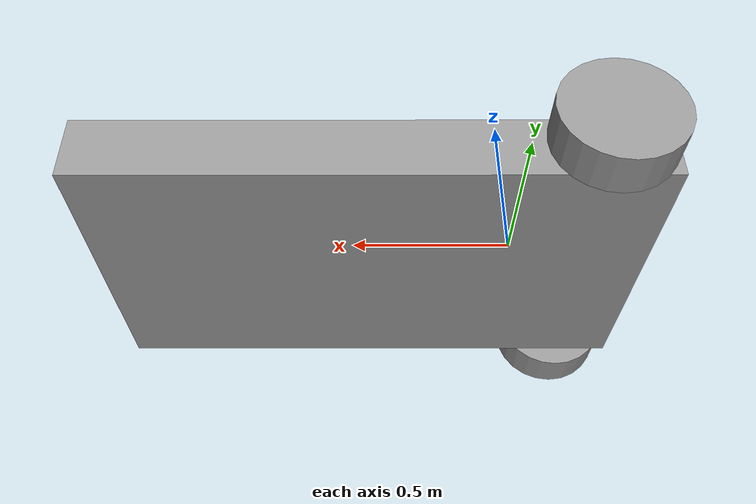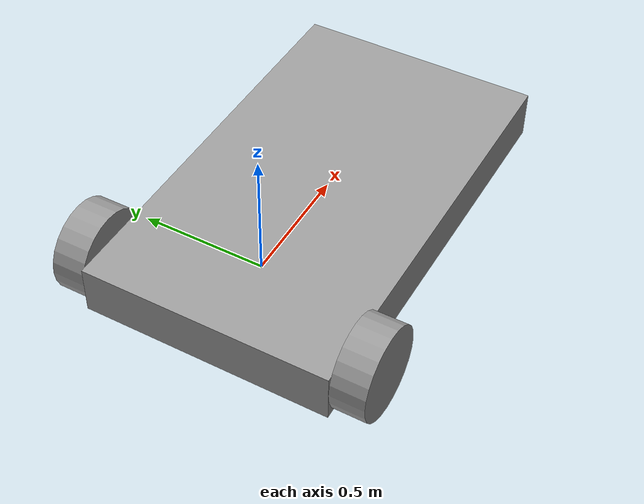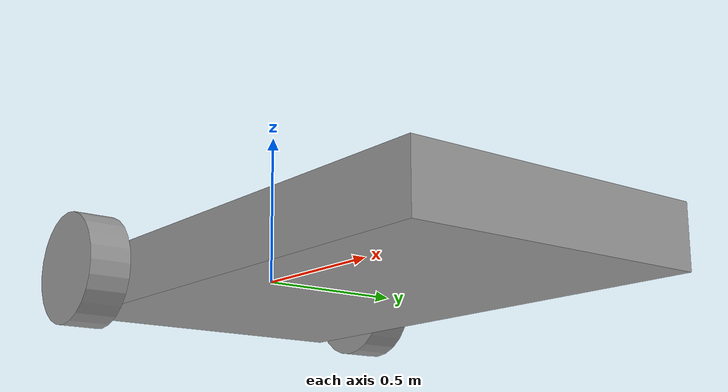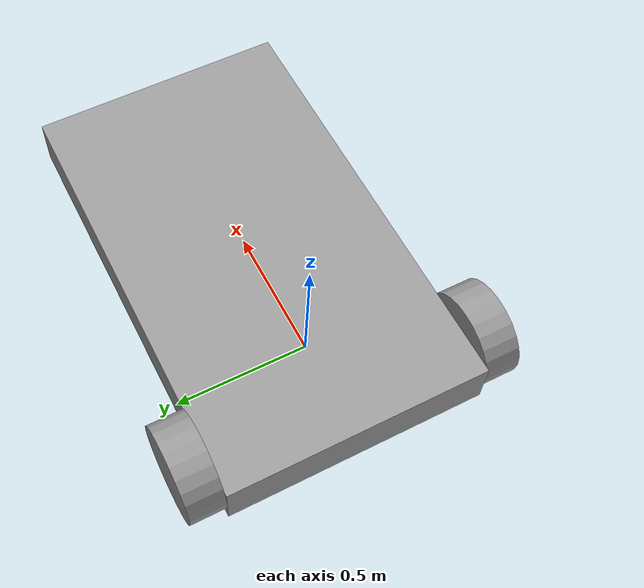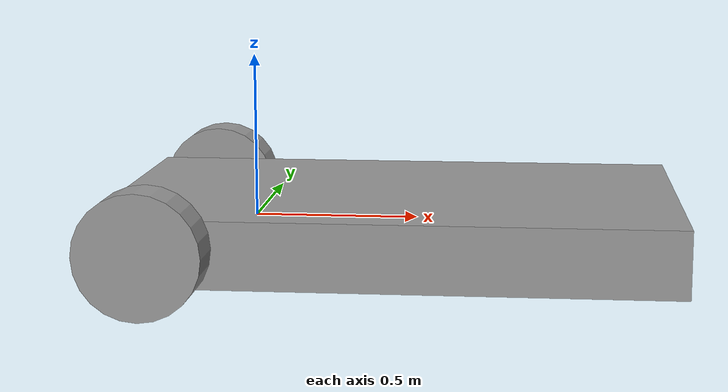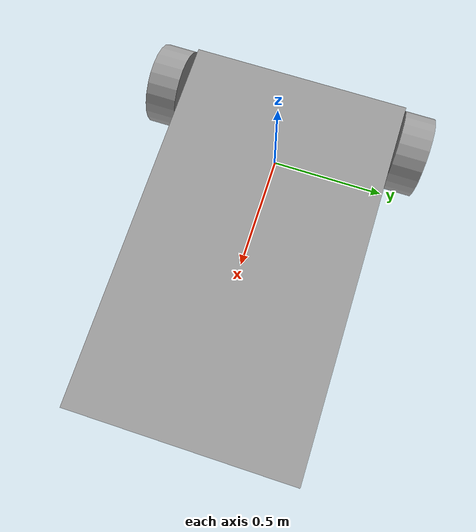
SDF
<?xml version='1.0'?>
<sdf version='1.6'>
  <model name='test1'>
    <link name='link_3'>
      <inertial>
        <mass>0.335133</mass>
        <inertia>
          <ixx>0.0290207</ixx>
          <ixy>0</ixy>
          <ixz>0</ixz>
          <iyy>0.0812336</iyy>
          <iyz>0</iyz>
          <izz>0.108068</izz>
        </inertia>
        <pose frame=''>0 0 0 0 -0 0</pose>
      </inertial>
      <pose frame=''>0.443852 -0 -0.013696 0 -0 0</pose>
      <visual name='visual'>
        <pose frame=''>0 0 0 0 -0 0</pose>
        <geometry>
          <box>
            <size>1.69398 1 0.197823</size>
          </box>
        </geometry>
        <material>
          <lighting>1</lighting>
          <script>
            <uri>file://media/materials/scripts/gazebo.material</uri>
            <name>Gazebo/Grey</name>
          </script>
          <shader type='pixel'/>
          <emissive>0 0 0 1</emissive>
        </material>
        <transparency>0</transparency>
        <cast_shadows>1</cast_shadows>
      </visual>
      <collision name='collision'>
        <laser_retro>0</laser_retro>
        <max_contacts>10</max_contacts>
        <pose frame=''>0 0 0 0 -0 0</pose>
        <geometry>
          <box>
            <size>1.69398 1 0.197823</size>
          </box>
        </geometry>
        <surface>
          <friction>
            <ode>
              <mu>1</mu>
              <mu2>1</mu2>
              <fdir1>0 0 0</fdir1>
              <slip1>0</slip1>
              <slip2>0</slip2>
            </ode>
            <torsional>
              <coefficient>1</coefficient>
              <patch_radius>0</patch_radius>
              <surface_radius>0</surface_radius>
              <use_patch_radius>1</use_patch_radius>
              <ode>
                <slip>0</slip>
              </ode>
            </torsional>
          </friction>
          <bounce>
            <restitution_coefficient>0</restitution_coefficient>
            <threshold>1e+06</threshold>
          </bounce>
          <contact>
            <collide_without_contact>0</collide_without_contact>
            <collide_without_contact_bitmask>1</collide_without_contact_bitmask>
            <collide_bitmask>1</collide_bitmask>
            <ode>
              <soft_cfm>0</soft_cfm>
              <soft_erp>0.2</soft_erp>
              <kp>1e+13</kp>
              <kd>1</kd>
              <max_vel>0.01</max_vel>
              <min_depth>0</min_depth>
            </ode>
            <bullet>
              <split_impulse>1</split_impulse>
              <split_impulse_penetration_threshold>-0.01</split_impulse_penetration_threshold>
              <soft_cfm>0</soft_cfm>
              <soft_erp>0.2</soft_erp>
              <kp>1e+13</kp>
              <kd>1</kd>
            </bullet>
          </contact>
        </surface>
      </collision>
    </link>
    <link name='link_4'>
      <inertial>
        <mass>0.0178124</mass>
        <inertia>
          <ixx>0.000173534</ixx>
          <ixy>0</ixy>
          <ixz>0</ixz>
          <iyy>0.000173534</iyy>
          <iyz>0</iyz>
          <izz>0.000292456</izz>
        </inertia>
        <pose frame=''>0 0 0 0 -0 0</pose>
      </inertial>
      <pose frame=''>-0.221926 -0.567816 0.006848 1.5708 -0 0</pose>
      <visual name='visual'>
        <pose frame=''>0 0 0 0 -0 0</pose>
        <geometry>
          <cylinder>
            <radius>0.181211</radius>
            <length>0.135631</length>
          </cylinder>
        </geometry>
        <material>
          <lighting>1</lighting>
          <script>
            <uri>file://media/materials/scripts/gazebo.material</uri>
            <name>Gazebo/Grey</name>
          </script>
          <shader type='pixel'/>
          <emissive>0 0 0 1</emissive>
        </material>
        <transparency>0</transparency>
        <cast_shadows>1</cast_shadows>
      </visual>
      <collision name='collision'>
        <laser_retro>0</laser_retro>
        <max_contacts>10</max_contacts>
        <pose frame=''>0 0 0 0 -0 0</pose>
        <geometry>
          <cylinder>
            <radius>0.181211</radius>
            <length>0.135631</length>
          </cylinder>
        </geometry>
        <surface>
          <friction>
            <ode>
              <mu>1</mu>
              <mu2>1</mu2>
              <fdir1>0 0 0</fdir1>
              <slip1>0</slip1>
              <slip2>0</slip2>
            </ode>
            <torsional>
              <coefficient>1</coefficient>
              <patch_radius>0</patch_radius>
              <surface_radius>0</surface_radius>
              <use_patch_radius>1</use_patch_radius>
              <ode>
                <slip>0</slip>
              </ode>
            </torsional>
          </friction>
          <bounce>
            <restitution_coefficient>0</restitution_coefficient>
            <threshold>1e+06</threshold>
          </bounce>
          <contact>
            <collide_without_contact>0</collide_without_contact>
            <collide_without_contact_bitmask>1</collide_without_contact_bitmask>
            <collide_bitmask>1</collide_bitmask>
            <ode>
              <soft_cfm>0</soft_cfm>
              <soft_erp>0.2</soft_erp>
              <kp>1e+13</kp>
              <kd>1</kd>
              <max_vel>0.01</max_vel>
              <min_depth>0</min_depth>
            </ode>
            <bullet>
              <split_impulse>1</split_impulse>
              <split_impulse_penetration_threshold>-0.01</split_impulse_penetration_threshold>
              <soft_cfm>0</soft_cfm>
              <soft_erp>0.2</soft_erp>
              <kp>1e+13</kp>
              <kd>1</kd>
            </bullet>
          </contact>
        </surface>
      </collision>
    </link>
    <link name='link_4_clone'>
      <inertial>
        <mass>0.0178124</mass>
        <inertia>
          <ixx>0.000173534</ixx>
          <ixy>0</ixy>
          <ixz>0</ixz>
          <iyy>0.000173534</iyy>
          <iyz>0</iyz>
          <izz>0.000292456</izz>
        </inertia>
        <pose frame=''>0 0 0 0 -0 0</pose>
      </inertial>
      <pose frame=''>-0.221926 0.567816 0.006848 1.5708 -0 0</pose>
      <visual name='visual'>
        <pose frame=''>0 0 0 0 -0 0</pose>
        <geometry>
          <cylinder>
            <radius>0.181211</radius>
            <length>0.135631</length>
          </cylinder>
        </geometry>
        <material>
          <lighting>1</lighting>
          <script>
            <uri>file://media/materials/scripts/gazebo.material</uri>
            <name>Gazebo/Grey</name>
          </script>
          <shader type='pixel'/>
          <emissive>0 0 0 1</emissive>
        </material>
        <transparency>0</transparency>
        <cast_shadows>1</cast_shadows>
      </visual>
      <collision name='collision'>
        <laser_retro>0</laser_retro>
        <max_contacts>10</max_contacts>
        <pose frame=''>0 0 0 0 -0 0</pose>
        <geometry>
          <cylinder>
            <radius>0.181211</radius>
            <length>0.135631</length>
          </cylinder>
        </geometry>
        <surface>
          <friction>
            <ode>
              <mu>1</mu>
              <mu2>1</mu2>
              <fdir1>0 0 0</fdir1>
              <slip1>0</slip1>
              <slip2>0</slip2>
            </ode>
            <torsional>
              <coefficient>1</coefficient>
              <patch_radius>0</patch_radius>
              <surface_radius>0</surface_radius>
              <use_patch_radius>1</use_patch_radius>
              <ode>
                <slip>0</slip>
              </ode>
            </torsional>
          </friction>
          <bounce>
            <restitution_coefficient>0</restitution_coefficient>
            <threshold>1e+06</threshold>
          </bounce>
          <contact>
            <collide_without_contact>0</collide_without_contact>
            <collide_without_contact_bitmask>1</collide_without_contact_bitmask>
            <collide_bitmask>1</collide_bitmask>
            <ode>
              <soft_cfm>0</soft_cfm>
              <soft_erp>0.2</soft_erp>
              <kp>1e+13</kp>
              <kd>1</kd>
              <max_vel>0.01</max_vel>
              <min_depth>0</min_depth>
            </ode>
            <bullet>
              <split_impulse>1</split_impulse>
              <split_impulse_penetration_threshold>-0.01</split_impulse_penetration_threshold>
              <soft_cfm>0</soft_cfm>
              <soft_erp>0.2</soft_erp>
              <kp>1e+13</kp>
              <kd>1</kd>
            </bullet>
          </contact>
        </surface>
      </collision>
    </link>
    <joint name='link_3_JOINT_10' type='revolute'>
      <parent>link_3</parent>
      <child>link_4_clone</child>
      <pose frame=''>0 0 0 0 -0 0</pose>
      <axis>
        <xyz>0 0 1</xyz>
        <use_parent_model_frame>0</use_parent_model_frame>
        <limit>
          <lower>-1.79769e+308</lower>
          <upper>1.79769e+308</upper>
          <effort>-1</effort>
          <velocity>-1</velocity>
        </limit>
        <dynamics>
          <spring_reference>0</spring_reference>
          <spring_stiffness>0</spring_stiffness>
          <damping>0</damping>
        </dynamics>
      </axis>
      <physics>
        <ode>
          <limit>
            <cfm>0</cfm>
            <erp>0.2</erp>
          </limit>
          <suspension>
            <cfm>0</cfm>
            <erp>0.2</erp>
          </suspension>
        </ode>
      </physics>
    </joint>
    <joint name='link_3_JOINT_8' type='revolute'>
      <parent>link_3</parent>
      <child>link_4</child>
      <pose frame=''>0 0 0 -0.03 0 0</pose>
      <axis>
        <xyz>0 0 1</xyz>
        <use_parent_model_frame>0</use_parent_model_frame>
        <limit>
          <lower>-1.79769e+308</lower>
          <upper>1.79769e+308</upper>
          <effort>-1</effort>
          <velocity>-1</velocity>
        </limit>
        <dynamics>
          <spring_reference>0</spring_reference>
          <spring_stiffness>0</spring_stiffness>
          <damping>0</damping>
        </dynamics>
      </axis>
      <physics>
        <ode>
          <limit>
            <cfm>0</cfm>
            <erp>0.2</erp>
          </limit>
          <suspension>
            <cfm>0</cfm>
            <erp>0.2</erp>
          </suspension>
        </ode>
      </physics>
    </joint>
    <static>0</static>
    <allow_auto_disable>1</allow_auto_disable>
  </model>
</sdf>
